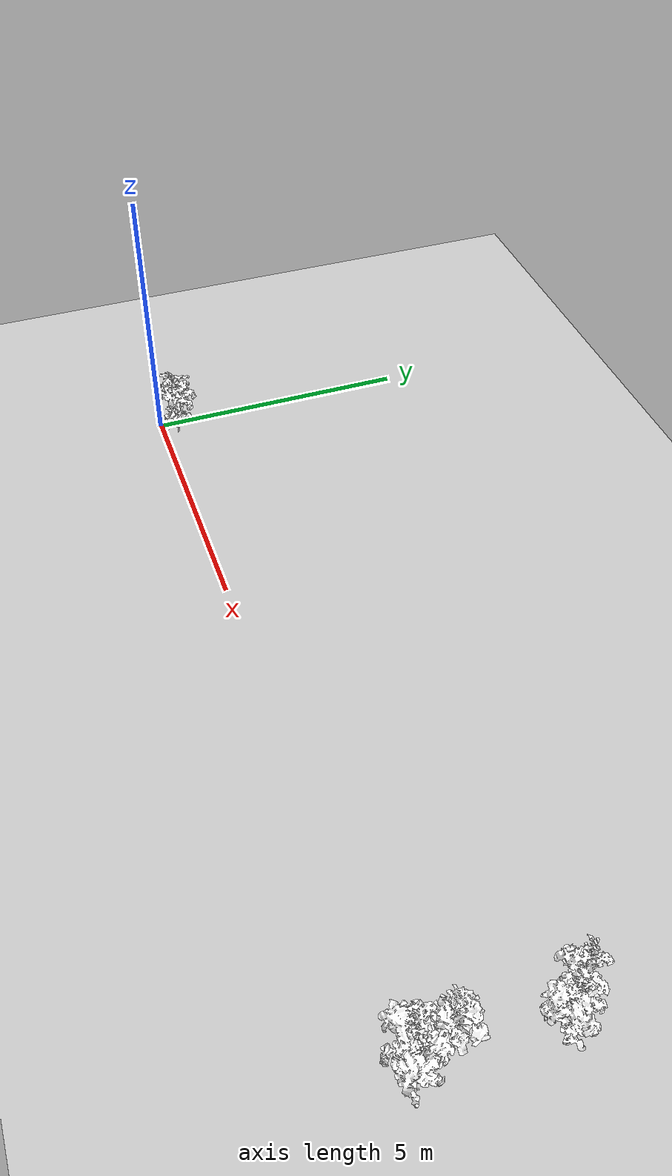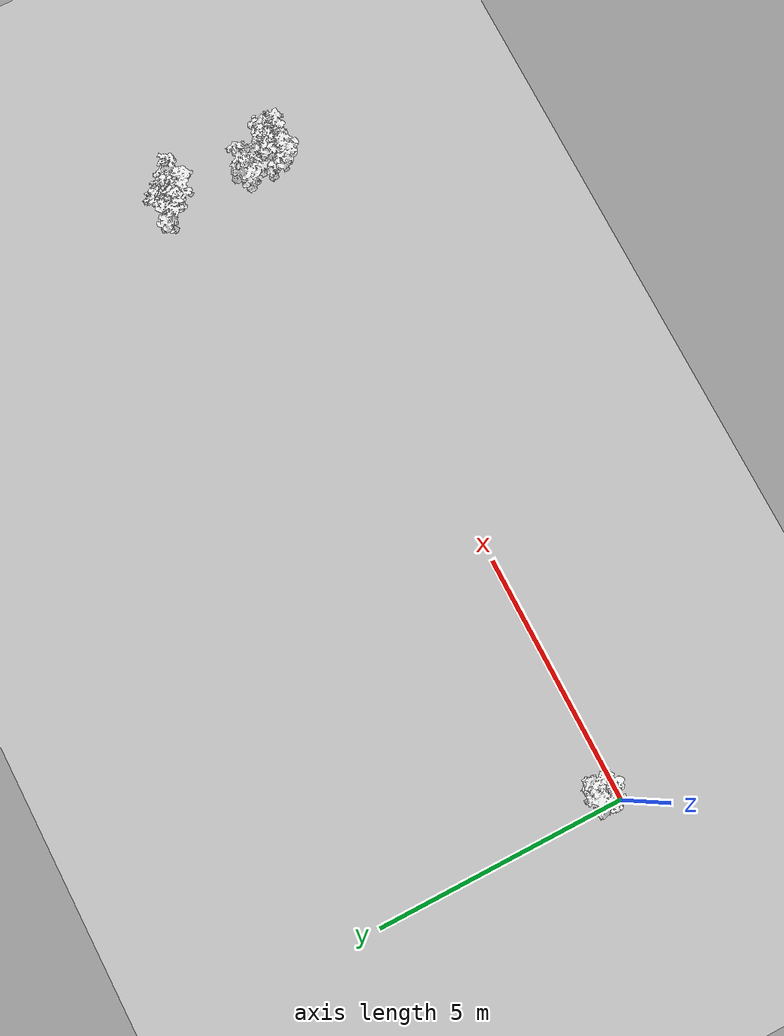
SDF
<sdf version="1.7">
 <world name="field">
  <physics name="1ms" type="ignored">
   <max_step_size>0.001</max_step_size>
   <real_time_factor>1</real_time_factor>
   <real_time_update_rate>1000</real_time_update_rate>
  </physics>
  <plugin name="ignition::gazebo::systems::Physics" filename="ignition-gazebo-physics-system"/>
  <plugin name="ignition::gazebo::systems::UserCommands" filename="ignition-gazebo-user-commands-system"/>
  <plugin name="ignition::gazebo::systems::SceneBroadcaster" filename="ignition-gazebo-scene-broadcaster-system"/>
  <plugin filename="ignition-gazebo-sensors-system" name="ignition::gazebo::systems::Sensors">
   <render_engine>ogre2</render_engine>
  </plugin>
  <scene><ambient>1 1 1 1</ambient><background>0.8 0.8 0.8 1</background><shadows>1</shadows></scene>
  <light name="sun" type="directional">
   <pose>0 0 10 0 -0 0</pose>
   <diffuse>0.8 0.8 0.8 1</diffuse>
   <specular>0.8 0.8 0.8 1</specular>
   <attenuation>
    <range>1000</range>
    <constant>0.9</constant>
    <linear>0.01</linear>
    <quadratic>0.001</quadratic>
   </attenuation>
   <direction>-0.5 0.1 -0.9</direction>
   <spot><inner_angle>0</inner_angle><outer_angle>0</outer_angle><falloff>0</falloff></spot>
  </light>
  <gravity>0 0 -9.8</gravity>
  <magnetic_field>6e-06 2.3e-05 -4.2e-05</magnetic_field>
  <atmosphere type="adiabatic"/>
  <include><uri>ground</uri><name>ground</name><pose>5.0 5.0 0 0 0 0</pose></include>
  <include><uri>tomato_11</uri><name>tomato_11</name><pose>0.3 0.3 0 0 0 0</pose></include>
  <include><uri>tomato_100</uri><name>tomato_100</name><pose>14.0 0.0 0 0 0 0</pose></include>
  <include><uri>tomato_102</uri><name>tomato_102</name><pose>14.0 0.6 0 0 0 0</pose></include>
  <include><uri>tomato_108</uri><name>tomato_108</name><pose>14.0 2.4 0 0 0 0</pose></include>
  <include><uri>tomato_110</uri><name>tomato_110</name><pose>14.3 0.0 0 0 0 0</pose></include>
  <include><uri>tomato_117</uri><name>tomato_117</name><pose>14.3 2.1 0 0 0 0</pose></include>
 </world>
</sdf>

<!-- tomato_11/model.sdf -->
<sdf version="1.6">
  <model name="tomato_11">
    <static>true</static>
    <link name="link">
      <collision name="collision">
        <geometry>
          <box>
            <size>.1 .1 1</size>
          </box>
        </geometry>
      </collision>
      <visual name="branch">
        <geometry>
          <mesh>
            <uri>file://tomato_11/meshes/tomato.dae</uri>
            <submesh>
              <name>Branch1</name>
            </submesh>
          </mesh>
        </geometry>
        <material>
          <diffuse>1.0 1.0 1.0</diffuse>
          <pbr>
            <metal>
              <albedo_map>file://tomato_11/materials/textures/AG15brn1.png</albedo_map>
            </metal>
          </pbr>
        </material>
          <plugin filename="ignition-gazebo-label-system" name="ignition::gazebo::systems::Label">
            <label>2</label>
          </plugin>
      </visual>
      <visual name="leaf1">
        <geometry>
          <mesh>
            <uri>file://tomato_11/meshes/tomato.dae</uri>
            <submesh>
              <name>Leaf1</name>
            </submesh>
          </mesh>
        </geometry>
        <material>
          <diffuse>1.0 1.0 1.0</diffuse>
          <pbr>
            <metal>
              <albedo_map>file://tomato_11/materials/textures/AG15lef1.png</albedo_map>
            </metal>
          </pbr>
        </material>
          <plugin filename="ignition-gazebo-label-system" name="ignition::gazebo::systems::Label">
            <label>3</label>
          </plugin>
      </visual>
      <visual name="leaf2">
        <geometry>
          <mesh>
            <uri>file://tomato_11/meshes/tomato.dae</uri>
            <submesh>
              <name>Leaf2</name>
            </submesh>
          </mesh>
        </geometry>
        <material>
          <diffuse>1.0 1.0 1.0</diffuse>
          <pbr>
            <metal>
              <albedo_map>file://tomato_11/materials/textures/AG15lef2.png</albedo_map>
            </metal>
          </pbr>
        </material>
          <plugin filename="ignition-gazebo-label-system" name="ignition::gazebo::systems::Label">
            <label>3</label>
          </plugin>
      </visual>
      <visual name="fruit1">
        <geometry>
          <mesh>
            <uri>file://tomato_11/meshes/tomato.dae</uri>
            <submesh>
              <name>Fruit1</name>
            </submesh>
          </mesh>
        </geometry>
        <material>
          <diffuse>1.0 1.0 1.0</diffuse>
          <pbr>
            <metal>
              <albedo_map>file://tomato_11/materials/textures/AG15frt1.png</albedo_map>
            </metal>
          </pbr>
        </material>
          <plugin filename="ignition-gazebo-label-system" name="ignition::gazebo::systems::Label">
            <label>4</label>
          </plugin>
      </visual>
      <visual name="fruit2">
        <geometry>
          <mesh>
            <uri>file://tomato_11/meshes/tomato.dae</uri>
            <submesh>
              <name>Fruit2</name>
            </submesh>
          </mesh>
        </geometry>
        <material>
          <diffuse>1.0 1.0 1.0</diffuse>
          <pbr>
            <metal>
              <albedo_map>file://tomato_11/materials/textures/AG15frt2.png</albedo_map>
            </metal>
          </pbr>
        </material>
          <plugin filename="ignition-gazebo-label-system" name="ignition::gazebo::systems::Label">
            <label>4</label>
          </plugin>
      </visual>
      <visual name="fruit3">
        <geometry>
          <mesh>
            <uri>file://tomato_11/meshes/tomato.dae</uri>
            <submesh>
              <name>Fruit3</name>
            </submesh>
          </mesh>
        </geometry>
        <material>
          <diffuse>1.0 1.0 1.0</diffuse>
          <pbr>
            <metal>
              <albedo_map>file://tomato_11/materials/textures/AG15frt3.png</albedo_map>
            </metal>
          </pbr>
        </material>
      </visual>
          <plugin filename="ignition-gazebo-label-system" name="ignition::gazebo::systems::Label">
            <label>4</label>
          </plugin>
      <visual name="fruit4">
        <geometry>
          <mesh>
            <uri>file://tomato_11/meshes/tomato.dae</uri>
            <submesh>
              <name>Fruit4</name>
            </submesh>
          </mesh>
        </geometry>
        <material>
          <diffuse>1.0 1.0 1.0</diffuse>
          <pbr>
            <metal>
              <albedo_map>file://tomato_11/materials/textures/AG15frt4.png</albedo_map>
            </metal>
          </pbr>
        </material>
          <plugin filename="ignition-gazebo-label-system" name="ignition::gazebo::systems::Label">
            <label>4</label>
          </plugin>
      </visual>
      <visual name="blossom1">
        <geometry>
          <mesh>
            <uri>file://tomato_11/meshes/tomato.dae</uri>
            <submesh>
              <name>Blossom1</name>
            </submesh>
          </mesh>
        </geometry>
        <material>
          <diffuse>1.0 1.0 1.0</diffuse>
          <pbr>
            <metal>
              <albedo_map>file://tomato_11/materials/textures/AG15blo1.png</albedo_map>
            </metal>
          </pbr>
        </material>
          <plugin filename="ignition-gazebo-label-system" name="ignition::gazebo::systems::Label">
            <label>5</label>
          </plugin>
      </visual>
      <visual name="blossom2">
        <geometry>
          <mesh>
            <uri>file://tomato_11/meshes/tomato.dae</uri>
            <submesh>
              <name>Blossom2</name>
            </submesh>
          </mesh>
        </geometry>
        <material>
          <diffuse>1.0 1.0 1.0</diffuse>
          <pbr>
            <metal>
              <albedo_map>file://tomato_11/materials/textures/AG15blo2.png</albedo_map>
            </metal>
          </pbr>
        </material>
          <plugin filename="ignition-gazebo-label-system" name="ignition::gazebo::systems::Label">
            <label>5</label>
          </plugin>
      </visual>
      <visual name="blossom3">
        <geometry>
          <mesh>
            <uri>file://tomato_11/meshes/tomato.dae</uri>
            <submesh>
              <name>Blossom3</name>
            </submesh>
          </mesh>
        </geometry>
        <material>
          <diffuse>1.0 1.0 1.0</diffuse>
          <pbr>
            <metal>
              <albedo_map>file://tomato_11/materials/textures/AG15blo3.png</albedo_map>
            </metal>
          </pbr>
        </material>
          <plugin filename="ignition-gazebo-label-system" name="ignition::gazebo::systems::Label">
            <label>5</label>
          </plugin>
      </visual>
    </link>
  </model>
</sdf>

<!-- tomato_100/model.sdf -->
<sdf version="1.6">
  <model name="tomato_100">
    <static>true</static>
    <link name="link">
      <collision name="collision">
        <geometry>
          <box>
            <size>.1 .1 1</size>
          </box>
        </geometry>
      </collision>
      <visual name="branch">
        <geometry>
          <mesh>
            <uri>file://tomato_100/meshes/tomato.dae</uri>
            <submesh>
              <name>Branch1</name>
            </submesh>
          </mesh>
        </geometry>
        <material>
          <diffuse>1.0 1.0 1.0</diffuse>
          <pbr>
            <metal>
              <albedo_map>file://tomato_100/materials/textures/AG15brn1.png</albedo_map>
            </metal>
          </pbr>
        </material>
      </visual>
      <visual name="leaf1">
        <geometry>
          <mesh>
            <uri>file://tomato_100/meshes/tomato.dae</uri>
            <submesh>
              <name>Leaf1</name>
            </submesh>
          </mesh>
        </geometry>
        <material>
          <diffuse>1.0 1.0 1.0</diffuse>
          <pbr>
            <metal>
              <albedo_map>file://tomato_100/materials/textures/AG15lef1.png</albedo_map>
            </metal>
          </pbr>
        </material>
      </visual>
      <visual name="leaf2">
        <geometry>
          <mesh>
            <uri>file://tomato_100/meshes/tomato.dae</uri>
            <submesh>
              <name>Leaf2</name>
            </submesh>
          </mesh>
        </geometry>
        <material>
          <diffuse>1.0 1.0 1.0</diffuse>
          <pbr>
            <metal>
              <albedo_map>file://tomato_100/materials/textures/AG15lef2.png</albedo_map>
            </metal>
          </pbr>
        </material>
      </visual>
      <visual name="fruit1">
        <geometry>
          <mesh>
            <uri>file://tomato_100/meshes/tomato.dae</uri>
            <submesh>
              <name>Fruit1</name>
            </submesh>
          </mesh>
        </geometry>
        <material>
          <diffuse>1.0 1.0 1.0</diffuse>
          <pbr>
            <metal>
              <albedo_map>file://tomato_100/materials/textures/AG15frt1.png</albedo_map>
            </metal>
          </pbr>
        </material>
      </visual>
      <visual name="fruit2">
        <geometry>
          <mesh>
            <uri>file://tomato_100/meshes/tomato.dae</uri>
            <submesh>
              <name>Fruit2</name>
            </submesh>
          </mesh>
        </geometry>
        <material>
          <diffuse>1.0 1.0 1.0</diffuse>
          <pbr>
            <metal>
              <albedo_map>file://tomato_100/materials/textures/AG15frt2.png</albedo_map>
            </metal>
          </pbr>
        </material>
      </visual>
      <visual name="fruit3">
        <geometry>
          <mesh>
            <uri>file://tomato_100/meshes/tomato.dae</uri>
            <submesh>
              <name>Fruit3</name>
            </submesh>
          </mesh>
        </geometry>
        <material>
          <diffuse>1.0 1.0 1.0</diffuse>
          <pbr>
            <metal>
              <albedo_map>file://tomato_100/materials/textures/AG15frt3.png</albedo_map>
            </metal>
          </pbr>
        </material>
      </visual>
      <visual name="fruit4">
        <geometry>
          <mesh>
            <uri>file://tomato_100/meshes/tomato.dae</uri>
            <submesh>
              <name>Fruit4</name>
            </submesh>
          </mesh>
        </geometry>
        <material>
          <diffuse>1.0 1.0 1.0</diffuse>
          <pbr>
            <metal>
              <albedo_map>file://tomato_100/materials/textures/AG15frt4.png</albedo_map>
            </metal>
          </pbr>
        </material>
      </visual>
      <visual name="blossom1">
        <geometry>
          <mesh>
            <uri>file://tomato_100/meshes/tomato.dae</uri>
            <submesh>
              <name>Blossom1</name>
            </submesh>
          </mesh>
        </geometry>
        <material>
          <diffuse>1.0 1.0 1.0</diffuse>
          <pbr>
            <metal>
              <albedo_map>file://tomato_100/materials/textures/AG15blo1.png</albedo_map>
            </metal>
          </pbr>
        </material>
      </visual>
      <visual name="blossom2">
        <geometry>
          <mesh>
            <uri>file://tomato_100/meshes/tomato.dae</uri>
            <submesh>
              <name>Blossom2</name>
            </submesh>
          </mesh>
        </geometry>
        <material>
          <diffuse>1.0 1.0 1.0</diffuse>
          <pbr>
            <metal>
              <albedo_map>file://tomato_100/materials/textures/AG15blo2.png</albedo_map>
            </metal>
          </pbr>
        </material>
      </visual>
      <visual name="blossom3">
        <geometry>
          <mesh>
            <uri>file://tomato_100/meshes/tomato.dae</uri>
            <submesh>
              <name>Blossom3</name>
            </submesh>
          </mesh>
        </geometry>
        <material>
          <diffuse>1.0 1.0 1.0</diffuse>
          <pbr>
            <metal>
              <albedo_map>file://tomato_100/materials/textures/AG15blo3.png</albedo_map>
            </metal>
          </pbr>
        </material>
      </visual>
    </link>
  </model>
</sdf>

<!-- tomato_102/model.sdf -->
<sdf version="1.6">
  <model name="tomato_102">
    <static>true</static>
    <link name="link">
      <collision name="collision">
        <geometry>
          <box>
            <size>.1 .1 1</size>
          </box>
        </geometry>
      </collision>
      <visual name="branch">
        <geometry>
          <mesh>
            <uri>file://tomato_102/meshes/tomato.dae</uri>
            <submesh>
              <name>Branch1</name>
            </submesh>
          </mesh>
        </geometry>
        <material>
          <diffuse>1.0 1.0 1.0</diffuse>
          <pbr>
            <metal>
              <albedo_map>file://tomato_102/materials/textures/AG15brn1.png</albedo_map>
            </metal>
          </pbr>
        </material>
      </visual>
      <visual name="leaf1">
        <geometry>
          <mesh>
            <uri>file://tomato_102/meshes/tomato.dae</uri>
            <submesh>
              <name>Leaf1</name>
            </submesh>
          </mesh>
        </geometry>
        <material>
          <diffuse>1.0 1.0 1.0</diffuse>
          <pbr>
            <metal>
              <albedo_map>file://tomato_102/materials/textures/AG15lef1.png</albedo_map>
            </metal>
          </pbr>
        </material>
      </visual>
      <visual name="leaf2">
        <geometry>
          <mesh>
            <uri>file://tomato_102/meshes/tomato.dae</uri>
            <submesh>
              <name>Leaf2</name>
            </submesh>
          </mesh>
        </geometry>
        <material>
          <diffuse>1.0 1.0 1.0</diffuse>
          <pbr>
            <metal>
              <albedo_map>file://tomato_102/materials/textures/AG15lef2.png</albedo_map>
            </metal>
          </pbr>
        </material>
      </visual>
      <visual name="fruit1">
        <geometry>
          <mesh>
            <uri>file://tomato_102/meshes/tomato.dae</uri>
            <submesh>
              <name>Fruit1</name>
            </submesh>
          </mesh>
        </geometry>
        <material>
          <diffuse>1.0 1.0 1.0</diffuse>
          <pbr>
            <metal>
              <albedo_map>file://tomato_102/materials/textures/AG15frt1.png</albedo_map>
            </metal>
          </pbr>
        </material>
      </visual>
      <visual name="fruit2">
        <geometry>
          <mesh>
            <uri>file://tomato_102/meshes/tomato.dae</uri>
            <submesh>
              <name>Fruit2</name>
            </submesh>
          </mesh>
        </geometry>
        <material>
          <diffuse>1.0 1.0 1.0</diffuse>
          <pbr>
            <metal>
              <albedo_map>file://tomato_102/materials/textures/AG15frt2.png</albedo_map>
            </metal>
          </pbr>
        </material>
      </visual>
      <visual name="fruit3">
        <geometry>
          <mesh>
            <uri>file://tomato_102/meshes/tomato.dae</uri>
            <submesh>
              <name>Fruit3</name>
            </submesh>
          </mesh>
        </geometry>
        <material>
          <diffuse>1.0 1.0 1.0</diffuse>
          <pbr>
            <metal>
              <albedo_map>file://tomato_102/materials/textures/AG15frt3.png</albedo_map>
            </metal>
          </pbr>
        </material>
      </visual>
      <visual name="fruit4">
        <geometry>
          <mesh>
            <uri>file://tomato_102/meshes/tomato.dae</uri>
            <submesh>
              <name>Fruit4</name>
            </submesh>
          </mesh>
        </geometry>
        <material>
          <diffuse>1.0 1.0 1.0</diffuse>
          <pbr>
            <metal>
              <albedo_map>file://tomato_102/materials/textures/AG15frt4.png</albedo_map>
            </metal>
          </pbr>
        </material>
      </visual>
      <visual name="blossom1">
        <geometry>
          <mesh>
            <uri>file://tomato_102/meshes/tomato.dae</uri>
            <submesh>
              <name>Blossom1</name>
            </submesh>
          </mesh>
        </geometry>
        <material>
          <diffuse>1.0 1.0 1.0</diffuse>
          <pbr>
            <metal>
              <albedo_map>file://tomato_102/materials/textures/AG15blo1.png</albedo_map>
            </metal>
          </pbr>
        </material>
      </visual>
      <visual name="blossom2">
        <geometry>
          <mesh>
            <uri>file://tomato_102/meshes/tomato.dae</uri>
            <submesh>
              <name>Blossom2</name>
            </submesh>
          </mesh>
        </geometry>
        <material>
          <diffuse>1.0 1.0 1.0</diffuse>
          <pbr>
            <metal>
              <albedo_map>file://tomato_102/materials/textures/AG15blo2.png</albedo_map>
            </metal>
          </pbr>
        </material>
      </visual>
      <visual name="blossom3">
        <geometry>
          <mesh>
            <uri>file://tomato_102/meshes/tomato.dae</uri>
            <submesh>
              <name>Blossom3</name>
            </submesh>
          </mesh>
        </geometry>
        <material>
          <diffuse>1.0 1.0 1.0</diffuse>
          <pbr>
            <metal>
              <albedo_map>file://tomato_102/materials/textures/AG15blo3.png</albedo_map>
            </metal>
          </pbr>
        </material>
      </visual>
    </link>
  </model>
</sdf>

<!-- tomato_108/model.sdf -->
<sdf version="1.6">
  <model name="tomato_108">
    <static>true</static>
    <link name="link">
      <collision name="collision">
        <geometry>
          <box>
            <size>.1 .1 1</size>
          </box>
        </geometry>
      </collision>
      <visual name="branch">
        <geometry>
          <mesh>
            <uri>file://tomato_108/meshes/tomato.dae</uri>
            <submesh>
              <name>Branch1</name>
            </submesh>
          </mesh>
        </geometry>
        <material>
          <diffuse>1.0 1.0 1.0</diffuse>
          <pbr>
            <metal>
              <albedo_map>file://tomato_108/materials/textures/AG15brn1.png</albedo_map>
            </metal>
          </pbr>
        </material>
      </visual>
      <visual name="leaf1">
        <geometry>
          <mesh>
            <uri>file://tomato_108/meshes/tomato.dae</uri>
            <submesh>
              <name>Leaf1</name>
            </submesh>
          </mesh>
        </geometry>
        <material>
          <diffuse>1.0 1.0 1.0</diffuse>
          <pbr>
            <metal>
              <albedo_map>file://tomato_108/materials/textures/AG15lef1.png</albedo_map>
            </metal>
          </pbr>
        </material>
      </visual>
      <visual name="leaf2">
        <geometry>
          <mesh>
            <uri>file://tomato_108/meshes/tomato.dae</uri>
            <submesh>
              <name>Leaf2</name>
            </submesh>
          </mesh>
        </geometry>
        <material>
          <diffuse>1.0 1.0 1.0</diffuse>
          <pbr>
            <metal>
              <albedo_map>file://tomato_108/materials/textures/AG15lef2.png</albedo_map>
            </metal>
          </pbr>
        </material>
      </visual>
      <visual name="fruit1">
        <geometry>
          <mesh>
            <uri>file://tomato_108/meshes/tomato.dae</uri>
            <submesh>
              <name>Fruit1</name>
            </submesh>
          </mesh>
        </geometry>
        <material>
          <diffuse>1.0 1.0 1.0</diffuse>
          <pbr>
            <metal>
              <albedo_map>file://tomato_108/materials/textures/AG15frt1.png</albedo_map>
            </metal>
          </pbr>
        </material>
      </visual>
      <visual name="fruit2">
        <geometry>
          <mesh>
            <uri>file://tomato_108/meshes/tomato.dae</uri>
            <submesh>
              <name>Fruit2</name>
            </submesh>
          </mesh>
        </geometry>
        <material>
          <diffuse>1.0 1.0 1.0</diffuse>
          <pbr>
            <metal>
              <albedo_map>file://tomato_108/materials/textures/AG15frt2.png</albedo_map>
            </metal>
          </pbr>
        </material>
      </visual>
      <visual name="fruit3">
        <geometry>
          <mesh>
            <uri>file://tomato_108/meshes/tomato.dae</uri>
            <submesh>
              <name>Fruit3</name>
            </submesh>
          </mesh>
        </geometry>
        <material>
          <diffuse>1.0 1.0 1.0</diffuse>
          <pbr>
            <metal>
              <albedo_map>file://tomato_108/materials/textures/AG15frt3.png</albedo_map>
            </metal>
          </pbr>
        </material>
      </visual>
      <visual name="fruit4">
        <geometry>
          <mesh>
            <uri>file://tomato_108/meshes/tomato.dae</uri>
            <submesh>
              <name>Fruit4</name>
            </submesh>
          </mesh>
        </geometry>
        <material>
          <diffuse>1.0 1.0 1.0</diffuse>
          <pbr>
            <metal>
              <albedo_map>file://tomato_108/materials/textures/AG15frt4.png</albedo_map>
            </metal>
          </pbr>
        </material>
      </visual>
      <visual name="blossom1">
        <geometry>
          <mesh>
            <uri>file://tomato_108/meshes/tomato.dae</uri>
            <submesh>
              <name>Blossom1</name>
            </submesh>
          </mesh>
        </geometry>
        <material>
          <diffuse>1.0 1.0 1.0</diffuse>
          <pbr>
            <metal>
              <albedo_map>file://tomato_108/materials/textures/AG15blo1.png</albedo_map>
            </metal>
          </pbr>
        </material>
      </visual>
      <visual name="blossom2">
        <geometry>
          <mesh>
            <uri>file://tomato_108/meshes/tomato.dae</uri>
            <submesh>
              <name>Blossom2</name>
            </submesh>
          </mesh>
        </geometry>
        <material>
          <diffuse>1.0 1.0 1.0</diffuse>
          <pbr>
            <metal>
              <albedo_map>file://tomato_108/materials/textures/AG15blo2.png</albedo_map>
            </metal>
          </pbr>
        </material>
      </visual>
      <visual name="blossom3">
        <geometry>
          <mesh>
            <uri>file://tomato_108/meshes/tomato.dae</uri>
            <submesh>
              <name>Blossom3</name>
            </submesh>
          </mesh>
        </geometry>
        <material>
          <diffuse>1.0 1.0 1.0</diffuse>
          <pbr>
            <metal>
              <albedo_map>file://tomato_108/materials/textures/AG15blo3.png</albedo_map>
            </metal>
          </pbr>
        </material>
      </visual>
    </link>
  </model>
</sdf>

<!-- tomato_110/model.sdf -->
<sdf version="1.6">
  <model name="tomato_110">
    <static>true</static>
    <link name="link">
      <collision name="collision">
        <geometry>
          <box>
            <size>.1 .1 1</size>
          </box>
        </geometry>
      </collision>
      <visual name="branch">
        <geometry>
          <mesh>
            <uri>file://tomato_110/meshes/tomato.dae</uri>
            <submesh>
              <name>Branch1</name>
            </submesh>
          </mesh>
        </geometry>
        <material>
          <diffuse>1.0 1.0 1.0</diffuse>
          <pbr>
            <metal>
              <albedo_map>file://tomato_110/materials/textures/AG15brn1.png</albedo_map>
            </metal>
          </pbr>
        </material>
      </visual>
      <visual name="leaf1">
        <geometry>
          <mesh>
            <uri>file://tomato_110/meshes/tomato.dae</uri>
            <submesh>
              <name>Leaf1</name>
            </submesh>
          </mesh>
        </geometry>
        <material>
          <diffuse>1.0 1.0 1.0</diffuse>
          <pbr>
            <metal>
              <albedo_map>file://tomato_110/materials/textures/AG15lef1.png</albedo_map>
            </metal>
          </pbr>
        </material>
      </visual>
      <visual name="leaf2">
        <geometry>
          <mesh>
            <uri>file://tomato_110/meshes/tomato.dae</uri>
            <submesh>
              <name>Leaf2</name>
            </submesh>
          </mesh>
        </geometry>
        <material>
          <diffuse>1.0 1.0 1.0</diffuse>
          <pbr>
            <metal>
              <albedo_map>file://tomato_110/materials/textures/AG15lef2.png</albedo_map>
            </metal>
          </pbr>
        </material>
      </visual>
      <visual name="fruit1">
        <geometry>
          <mesh>
            <uri>file://tomato_110/meshes/tomato.dae</uri>
            <submesh>
              <name>Fruit1</name>
            </submesh>
          </mesh>
        </geometry>
        <material>
          <diffuse>1.0 1.0 1.0</diffuse>
          <pbr>
            <metal>
              <albedo_map>file://tomato_110/materials/textures/AG15frt1.png</albedo_map>
            </metal>
          </pbr>
        </material>
      </visual>
      <visual name="fruit2">
        <geometry>
          <mesh>
            <uri>file://tomato_110/meshes/tomato.dae</uri>
            <submesh>
              <name>Fruit2</name>
            </submesh>
          </mesh>
        </geometry>
        <material>
          <diffuse>1.0 1.0 1.0</diffuse>
          <pbr>
            <metal>
              <albedo_map>file://tomato_110/materials/textures/AG15frt2.png</albedo_map>
            </metal>
          </pbr>
        </material>
      </visual>
      <visual name="fruit3">
        <geometry>
          <mesh>
            <uri>file://tomato_110/meshes/tomato.dae</uri>
            <submesh>
              <name>Fruit3</name>
            </submesh>
          </mesh>
        </geometry>
        <material>
          <diffuse>1.0 1.0 1.0</diffuse>
          <pbr>
            <metal>
              <albedo_map>file://tomato_110/materials/textures/AG15frt3.png</albedo_map>
            </metal>
          </pbr>
        </material>
      </visual>
      <visual name="fruit4">
        <geometry>
          <mesh>
            <uri>file://tomato_110/meshes/tomato.dae</uri>
            <submesh>
              <name>Fruit4</name>
            </submesh>
          </mesh>
        </geometry>
        <material>
          <diffuse>1.0 1.0 1.0</diffuse>
          <pbr>
            <metal>
              <albedo_map>file://tomato_110/materials/textures/AG15frt4.png</albedo_map>
            </metal>
          </pbr>
        </material>
      </visual>
      <visual name="blossom1">
        <geometry>
          <mesh>
            <uri>file://tomato_110/meshes/tomato.dae</uri>
            <submesh>
              <name>Blossom1</name>
            </submesh>
          </mesh>
        </geometry>
        <material>
          <diffuse>1.0 1.0 1.0</diffuse>
          <pbr>
            <metal>
              <albedo_map>file://tomato_110/materials/textures/AG15blo1.png</albedo_map>
            </metal>
          </pbr>
        </material>
      </visual>
      <visual name="blossom2">
        <geometry>
          <mesh>
            <uri>file://tomato_110/meshes/tomato.dae</uri>
            <submesh>
              <name>Blossom2</name>
            </submesh>
          </mesh>
        </geometry>
        <material>
          <diffuse>1.0 1.0 1.0</diffuse>
          <pbr>
            <metal>
              <albedo_map>file://tomato_110/materials/textures/AG15blo2.png</albedo_map>
            </metal>
          </pbr>
        </material>
      </visual>
      <visual name="blossom3">
        <geometry>
          <mesh>
            <uri>file://tomato_110/meshes/tomato.dae</uri>
            <submesh>
              <name>Blossom3</name>
            </submesh>
          </mesh>
        </geometry>
        <material>
          <diffuse>1.0 1.0 1.0</diffuse>
          <pbr>
            <metal>
              <albedo_map>file://tomato_110/materials/textures/AG15blo3.png</albedo_map>
            </metal>
          </pbr>
        </material>
      </visual>
    </link>
  </model>
</sdf>

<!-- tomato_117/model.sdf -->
<sdf version="1.6">
  <model name="tomato_117">
    <static>true</static>
    <link name="link">
      <collision name="collision">
        <geometry>
          <box>
            <size>.1 .1 1</size>
          </box>
        </geometry>
      </collision>
      <visual name="branch">
        <geometry>
          <mesh>
            <uri>file://tomato_117/meshes/tomato.dae</uri>
            <submesh>
              <name>Branch1</name>
            </submesh>
          </mesh>
        </geometry>
        <material>
          <diffuse>1.0 1.0 1.0</diffuse>
          <pbr>
            <metal>
              <albedo_map>file://tomato_117/materials/textures/AG15brn1.png</albedo_map>
            </metal>
          </pbr>
        </material>
      </visual>
      <visual name="leaf1">
        <geometry>
          <mesh>
            <uri>file://tomato_117/meshes/tomato.dae</uri>
            <submesh>
              <name>Leaf1</name>
            </submesh>
          </mesh>
        </geometry>
        <material>
          <diffuse>1.0 1.0 1.0</diffuse>
          <pbr>
            <metal>
              <albedo_map>file://tomato_117/materials/textures/AG15lef1.png</albedo_map>
            </metal>
          </pbr>
        </material>
      </visual>
      <visual name="leaf2">
        <geometry>
          <mesh>
            <uri>file://tomato_117/meshes/tomato.dae</uri>
            <submesh>
              <name>Leaf2</name>
            </submesh>
          </mesh>
        </geometry>
        <material>
          <diffuse>1.0 1.0 1.0</diffuse>
          <pbr>
            <metal>
              <albedo_map>file://tomato_117/materials/textures/AG15lef2.png</albedo_map>
            </metal>
          </pbr>
        </material>
      </visual>
      <visual name="fruit1">
        <geometry>
          <mesh>
            <uri>file://tomato_117/meshes/tomato.dae</uri>
            <submesh>
              <name>Fruit1</name>
            </submesh>
          </mesh>
        </geometry>
        <material>
          <diffuse>1.0 1.0 1.0</diffuse>
          <pbr>
            <metal>
              <albedo_map>file://tomato_117/materials/textures/AG15frt1.png</albedo_map>
            </metal>
          </pbr>
        </material>
      </visual>
      <visual name="fruit2">
        <geometry>
          <mesh>
            <uri>file://tomato_117/meshes/tomato.dae</uri>
            <submesh>
              <name>Fruit2</name>
            </submesh>
          </mesh>
        </geometry>
        <material>
          <diffuse>1.0 1.0 1.0</diffuse>
          <pbr>
            <metal>
              <albedo_map>file://tomato_117/materials/textures/AG15frt2.png</albedo_map>
            </metal>
          </pbr>
        </material>
      </visual>
      <visual name="fruit3">
        <geometry>
          <mesh>
            <uri>file://tomato_117/meshes/tomato.dae</uri>
            <submesh>
              <name>Fruit3</name>
            </submesh>
          </mesh>
        </geometry>
        <material>
          <diffuse>1.0 1.0 1.0</diffuse>
          <pbr>
            <metal>
              <albedo_map>file://tomato_117/materials/textures/AG15frt3.png</albedo_map>
            </metal>
          </pbr>
        </material>
      </visual>
      <visual name="fruit4">
        <geometry>
          <mesh>
            <uri>file://tomato_117/meshes/tomato.dae</uri>
            <submesh>
              <name>Fruit4</name>
            </submesh>
          </mesh>
        </geometry>
        <material>
          <diffuse>1.0 1.0 1.0</diffuse>
          <pbr>
            <metal>
              <albedo_map>file://tomato_117/materials/textures/AG15frt4.png</albedo_map>
            </metal>
          </pbr>
        </material>
      </visual>
      <visual name="blossom1">
        <geometry>
          <mesh>
            <uri>file://tomato_117/meshes/tomato.dae</uri>
            <submesh>
              <name>Blossom1</name>
            </submesh>
          </mesh>
        </geometry>
        <material>
          <diffuse>1.0 1.0 1.0</diffuse>
          <pbr>
            <metal>
              <albedo_map>file://tomato_117/materials/textures/AG15blo1.png</albedo_map>
            </metal>
          </pbr>
        </material>
      </visual>
      <visual name="blossom2">
        <geometry>
          <mesh>
            <uri>file://tomato_117/meshes/tomato.dae</uri>
            <submesh>
              <name>Blossom2</name>
            </submesh>
          </mesh>
        </geometry>
        <material>
          <diffuse>1.0 1.0 1.0</diffuse>
          <pbr>
            <metal>
              <albedo_map>file://tomato_117/materials/textures/AG15blo2.png</albedo_map>
            </metal>
          </pbr>
        </material>
      </visual>
      <visual name="blossom3">
        <geometry>
          <mesh>
            <uri>file://tomato_117/meshes/tomato.dae</uri>
            <submesh>
              <name>Blossom3</name>
            </submesh>
          </mesh>
        </geometry>
        <material>
          <diffuse>1.0 1.0 1.0</diffuse>
          <pbr>
            <metal>
              <albedo_map>file://tomato_117/materials/textures/AG15blo3.png</albedo_map>
            </metal>
          </pbr>
        </material>
      </visual>
    </link>
  </model>
</sdf>
